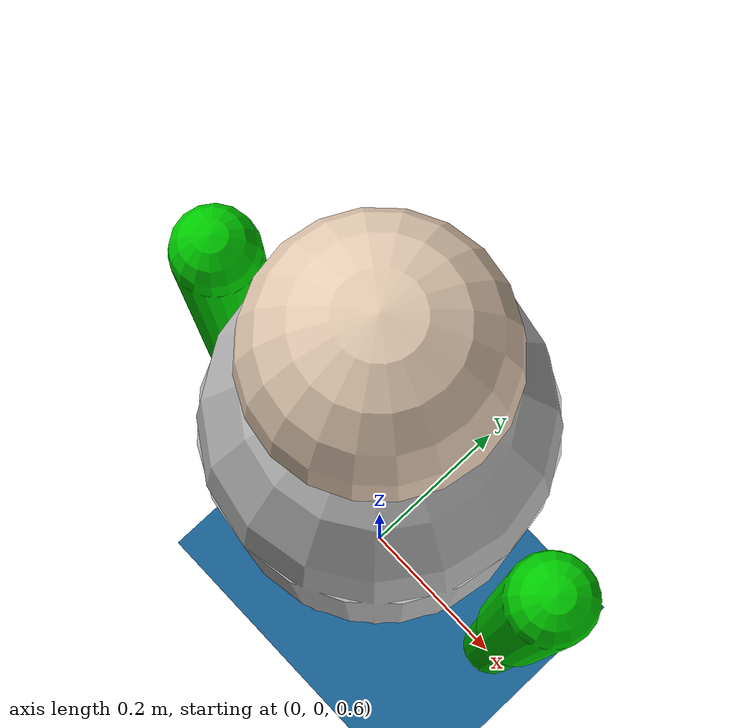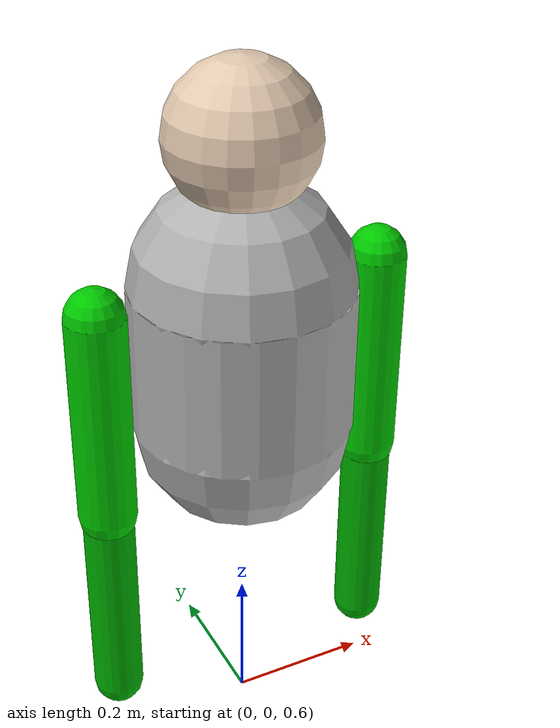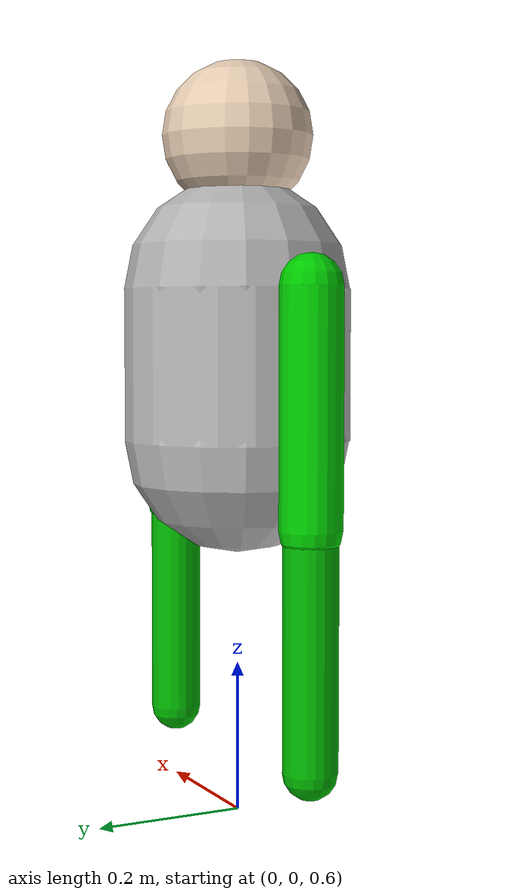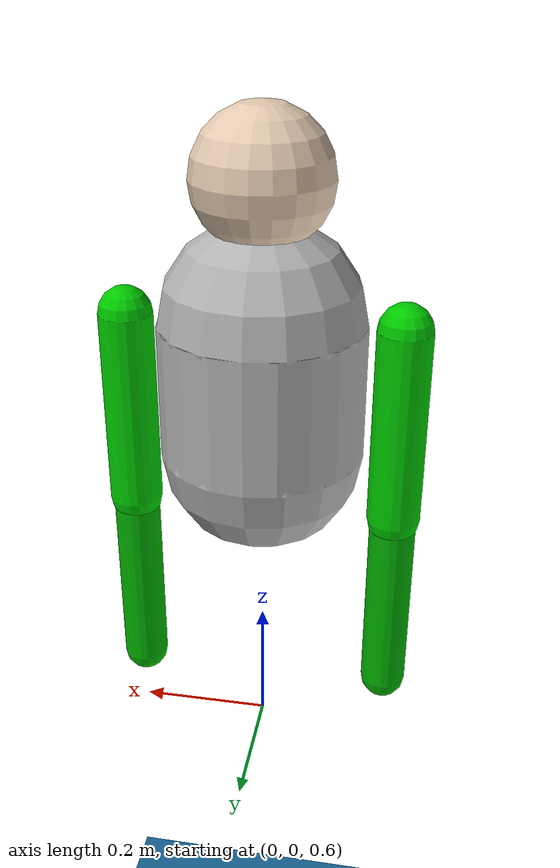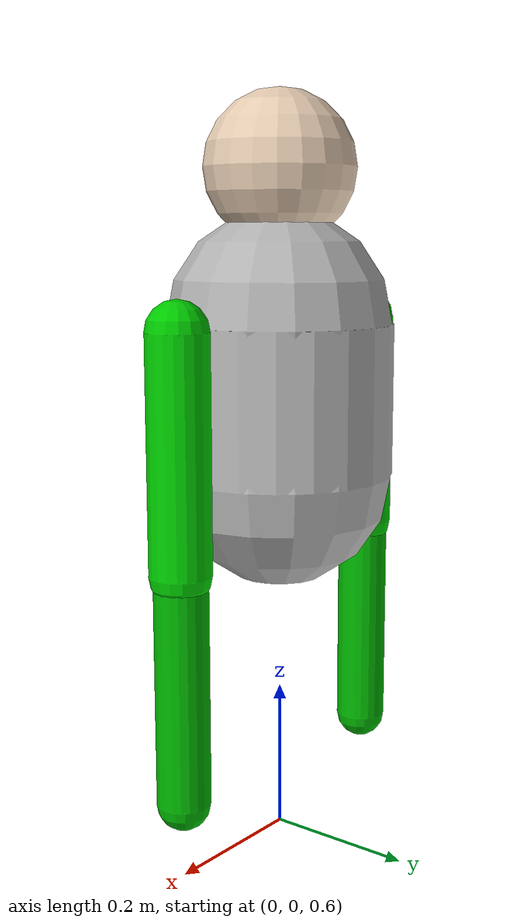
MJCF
<mujoco model="human_swimmer">
    <option gravity="0 0 -0.1" timestep="0.005" viscosity="1.0" density="1000">
        <flag energy="enable"/>
    </option>

    <asset>
        <texture name="grid" type="2d" builtin="checker" width="512" height="512" rgb1=".1 .2 .3" rgb2=".2 .3 .4"/>
        <material name="grid" texture="grid" texrepeat="1 1" texuniform="true" reflectance=".2"/>
    </asset>

    <default>
        <joint damping="0.5"/>
        <geom friction="0.001 0.001 0.001"/>
    </default>

    <worldbody>
        <!-- Main Directional Light -->
        <light name="sun" pos="0 0 10" dir="0.2 -0.2 -1" diffuse="0.8 0.8 0.8" specular="0.3 0.3 0.3" castshadow="true"/>
        <!-- Fill Light -->
        <light name="fill" pos="0 0 -5" dir="0 0 1" diffuse="0.3 0.3 0.4" specular="0.1 0.1 0.1"/>
        <!-- Ambient Light -->
        <light name="ambient" pos="0 0 0" diffuse="0.1 0.1 0.2" specular="0 0 0"/>

        <geom name="floor" type="plane" size="0 0 .05" material="grid" condim="3" rgba="0.1 0.4 0.6 1"/>

        <camera name="main_camera" pos="5 5 5" xyaxes="1 0 0 0 0 1"/>
        <camera name="chase_cam" pos="0 -4 2" mode="trackcom" xyaxes="0 1 0 0 0 1"/>

        <body name="torso" pos="0 0 1.2">
            <freejoint name="root"/>
            <geom name="chest" type="capsule" size="0.15 0.1 0.2" rgba="0.7 0.7 0.7 1"/>

            <!-- Head -->
            <body name="head" pos="0 0 0.3">
                <geom type="sphere" size="0.1" rgba="0.9 0.8 0.7 1"/>
            </body>

            <!-- Right Arm -->
            <body name="right_arm" pos="0.2 0 0.1">
                <joint name="right_shoulder" type="hinge" axis="0 1 0" range="-1.5 1.5" limited="true"/>
                <!-- Upper Arm: From shoulder to elbow -->
                <geom type="capsule" size="0.04" fromto="0 0 0 0 0 -0.3" rgba="0 0.8 0 1"/>

                <!-- Right Forearm -->
                <body name="right_forearm" pos="0 0 -0.3">
                    <joint name="right_elbow" type="hinge" axis="0 1 0" range="0 2.5" limited="true"/>
                    <geom type="capsule" size="0.035" fromto="0 0 0 0 0 -0.3" rgba="0 0.7 0 1"/>
                </body>
            </body>

            <!-- Left Arm -->
            <body name="left_arm" pos="-0.2 0 0.1">
                <joint name="left_shoulder" type="hinge" axis="0 1 0" range="-1.5 1.5" limited="true"/>
                <!-- Upper Arm: From shoulder to elbow -->
                <geom type="capsule" size="0.04" fromto="0 0 0 0 0 -0.3" rgba="0 0.8 0 1"/>

                <!-- Left Forearm -->
                <body name="left_forearm" pos="0 0 -0.3">
                    <joint name="left_elbow" type="hinge" axis="0 1 0" range="0 2.5" limited="true"/>
                    <geom type="capsule" size="0.035" fromto="0 0 0 0 0 -0.3" rgba="0 0.7 0 1"/>
                </body>
            </body>
        </body>
    </worldbody>

    <actuator>
        <!-- Shoulder actuators -->
        <motor name="right_shoulder_motor" joint="right_shoulder" gear="50"/>
        <motor name="left_shoulder_motor" joint="left_shoulder" gear="50"/>
        <!-- Elbow actuators -->
        <motor name="right_elbow_motor" joint="right_elbow" gear="25"/>
        <motor name="left_elbow_motor" joint="left_elbow" gear="25"/>
    </actuator>
</mujoco>
